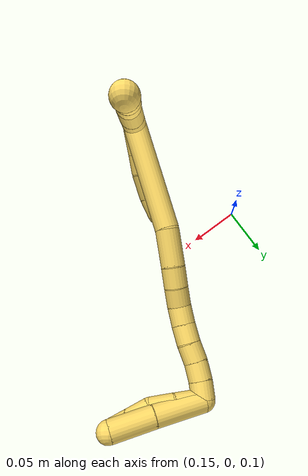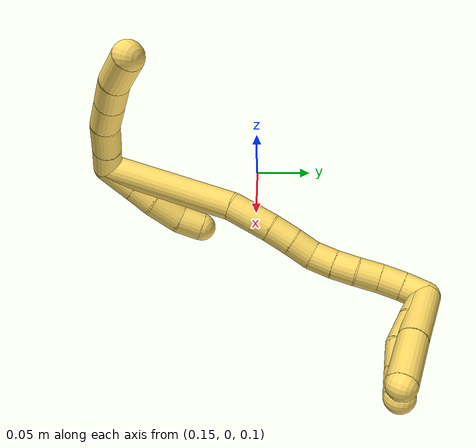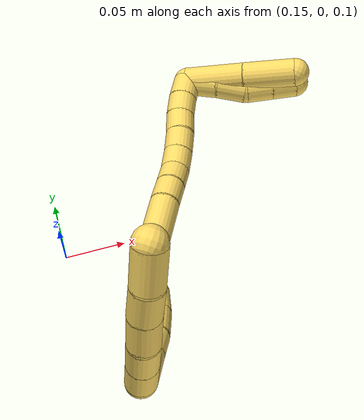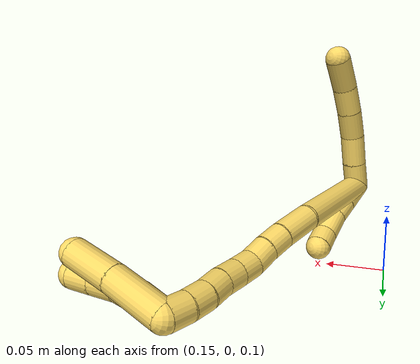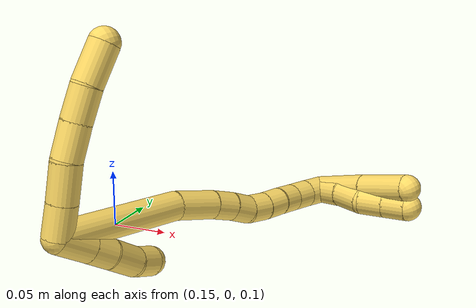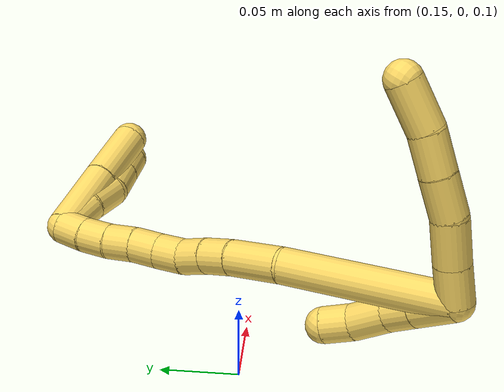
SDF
<sdf version="1.7">
 <world name="default">
  <model name="5">
   <static>0</static>
   <link name="5">
    <collision name="collision-cylinder-e_1_2_8">
     <pose>-0.012399 -0.002326 -0.005481 2.74031 -1.12314 -2.51627</pose>
     <geometry><cylinder><radius>0.0125</radius><length>0.02751</length></cylinder></geometry>
     <surface>
      <friction><ode><mu>1.16</mu><mu2>1.16</mu2><slip1>0</slip1><slip2>0</slip2></ode></friction>
      <contact><ode><kp>1e+06</kp><kd>1</kd><max_vel>0</max_vel><min_depth>0.001</min_depth></ode></contact>
     </surface>
    </collision>
    <visual name="visual-cylinder-e_1_2_8">
     <pose>-0.012399 -0.002326 -0.005481 2.74031 -1.12314 -2.51627</pose>
     <geometry><cylinder><radius>0.0125</radius><length>0.02751</length></cylinder></geometry>
     <material><ambient>1 0.858824 0.4 1</ambient></material>
    </visual>
    <collision name="collision-cylinder-e_2_8_9">
     <pose>-0.039278 -0.007407 -0.016839 2.70304 -1.14934 -2.4787</pose>
     <geometry><cylinder><radius>0.0125</radius><length>0.031734</length></cylinder></geometry>
     <surface>
      <friction><ode><mu>1.16</mu><mu2>1.16</mu2><slip1>0</slip1><slip2>0</slip2></ode></friction>
      <contact><ode><kp>1e+06</kp><kd>1</kd><max_vel>0</max_vel><min_depth>0.001</min_depth></ode></contact>
     </surface>
    </collision>
    <visual name="visual-cylinder-e_2_8_9">
     <pose>-0.039278 -0.007407 -0.016839 2.70304 -1.14934 -2.4787</pose>
     <geometry><cylinder><radius>0.0125</radius><length>0.031734</length></cylinder></geometry>
     <material><ambient>1 0.858824 0.4 1</ambient></material>
    </visual>
    <collision name="collision-cylinder-e_3_9_10">
     <pose>-0.065695 -0.013492 -0.030397 2.73274 -0.959276 -2.38304</pose>
     <geometry><cylinder><radius>0.0125</radius><length>0.029163</length></cylinder></geometry>
     <surface>
      <friction><ode><mu>1.16</mu><mu2>1.16</mu2><slip1>0</slip1><slip2>0</slip2></ode></friction>
      <contact><ode><kp>1e+06</kp><kd>1</kd><max_vel>0</max_vel><min_depth>0.001</min_depth></ode></contact>
     </surface>
    </collision>
    <visual name="visual-cylinder-e_3_9_10">
     <pose>-0.065695 -0.013492 -0.030397 2.73274 -0.959276 -2.38304</pose>
     <geometry><cylinder><radius>0.0125</radius><length>0.029163</length></cylinder></geometry>
     <material><ambient>1 0.858824 0.4 1</ambient></material>
    </visual>
    <collision name="collision-cylinder-e_4_10_11">
     <pose>-0.088996 -0.019342 -0.045775 2.82493 -0.951472 -2.54053</pose>
     <geometry><cylinder><radius>0.0125</radius><length>0.027907</length></cylinder></geometry>
     <surface>
      <friction><ode><mu>1.16</mu><mu2>1.16</mu2><slip1>0</slip1><slip2>0</slip2></ode></friction>
      <contact><ode><kp>1e+06</kp><kd>1</kd><max_vel>0</max_vel><min_depth>0.001</min_depth></ode></contact>
     </surface>
    </collision>
    <visual name="visual-cylinder-e_4_10_11">
     <pose>-0.088996 -0.019342 -0.045775 2.82493 -0.951472 -2.54053</pose>
     <geometry><cylinder><radius>0.0125</radius><length>0.027907</length></cylinder></geometry>
     <material><ambient>1 0.858824 0.4 1</ambient></material>
    </visual>
    <collision name="collision-cylinder-e_5_11_6">
     <pose>-0.112286 -0.025817 -0.064688 2.80281 -0.786902 -2.35994</pose>
     <geometry><cylinder><radius>0.0125</radius><length>0.033686</length></cylinder></geometry>
     <surface>
      <friction><ode><mu>1.16</mu><mu2>1.16</mu2><slip1>0</slip1><slip2>0</slip2></ode></friction>
      <contact><ode><kp>1e+06</kp><kd>1</kd><max_vel>0</max_vel><min_depth>0.001</min_depth></ode></contact>
     </surface>
    </collision>
    <visual name="visual-cylinder-e_5_11_6">
     <pose>-0.112286 -0.025817 -0.064688 2.80281 -0.786902 -2.35994</pose>
     <geometry><cylinder><radius>0.0125</radius><length>0.033686</length></cylinder></geometry>
     <material><ambient>1 0.858824 0.4 1</ambient></material>
    </visual>
    <collision name="collision-cylinder-e_1_2_12">
     <pose>0.010165 9.2e-05 -0.011205 -3.1334 0.736788 -3.12036</pose>
     <geometry><cylinder><radius>0.0125</radius><length>0.030258</length></cylinder></geometry>
     <surface>
      <friction><ode><mu>1.16</mu><mu2>1.16</mu2><slip1>0</slip1><slip2>0</slip2></ode></friction>
      <contact><ode><kp>1e+06</kp><kd>1</kd><max_vel>0</max_vel><min_depth>0.001</min_depth></ode></contact>
     </surface>
    </collision>
    <visual name="visual-cylinder-e_1_2_12">
     <pose>0.010165 9.2e-05 -0.011205 -3.1334 0.736788 -3.12036</pose>
     <geometry><cylinder><radius>0.0125</radius><length>0.030258</length></cylinder></geometry>
     <material><ambient>1 0.858824 0.4 1</ambient></material>
    </visual>
    <collision name="collision-cylinder-e_2_12_13">
     <pose>0.027384 0.00043 -0.030076 -3.10953 0.743461 -3.05938</pose>
     <geometry><cylinder><radius>0.0125</radius><length>0.020841</length></cylinder></geometry>
     <surface>
      <friction><ode><mu>1.16</mu><mu2>1.16</mu2><slip1>0</slip1><slip2>0</slip2></ode></friction>
      <contact><ode><kp>1e+06</kp><kd>1</kd><max_vel>0</max_vel><min_depth>0.001</min_depth></ode></contact>
     </surface>
    </collision>
    <visual name="visual-cylinder-e_2_12_13">
     <pose>0.027384 0.00043 -0.030076 -3.10953 0.743461 -3.05938</pose>
     <geometry><cylinder><radius>0.0125</radius><length>0.020841</length></cylinder></geometry>
     <material><ambient>1 0.858824 0.4 1</ambient></material>
    </visual>
    <collision name="collision-cylinder-e_3_13_14">
     <pose>0.044363 -0.000722 -0.047445 2.99851 0.791717 2.80194</pose>
     <geometry><cylinder><radius>0.0125</radius><length>0.0279</length></cylinder></geometry>
     <surface>
      <friction><ode><mu>1.16</mu><mu2>1.16</mu2><slip1>0</slip1><slip2>0</slip2></ode></friction>
      <contact><ode><kp>1e+06</kp><kd>1</kd><max_vel>0</max_vel><min_depth>0.001</min_depth></ode></contact>
     </surface>
    </collision>
    <visual name="visual-cylinder-e_3_13_14">
     <pose>0.044363 -0.000722 -0.047445 2.99851 0.791717 2.80194</pose>
     <geometry><cylinder><radius>0.0125</radius><length>0.0279</length></cylinder></geometry>
     <material><ambient>1 0.858824 0.4 1</ambient></material>
    </visual>
    <collision name="collision-cylinder-e_4_14_5">
     <pose>0.060123 -0.005085 -0.065358 2.79509 0.589019 2.09501</pose>
     <geometry><cylinder><radius>0.0125</radius><length>0.021001</length></cylinder></geometry>
     <surface>
      <friction><ode><mu>1.16</mu><mu2>1.16</mu2><slip1>0</slip1><slip2>0</slip2></ode></friction>
      <contact><ode><kp>1e+06</kp><kd>1</kd><max_vel>0</max_vel><min_depth>0.001</min_depth></ode></contact>
     </surface>
    </collision>
    <visual name="visual-cylinder-e_4_14_5">
     <pose>0.060123 -0.005085 -0.065358 2.79509 0.589019 2.09501</pose>
     <geometry><cylinder><radius>0.0125</radius><length>0.021001</length></cylinder></geometry>
     <material><ambient>1 0.858824 0.4 1</ambient></material>
    </visual>
    <collision name="collision-cylinder-e_1_2_15">
     <pose>0.017865 -0.011787 -0.055203 2.93123 0.306515 1.94254</pose>
     <geometry><cylinder><radius>0.0125</radius><length>0.118414</length></cylinder></geometry>
     <surface>
      <friction><ode><mu>1.16</mu><mu2>1.16</mu2><slip1>0</slip1><slip2>0</slip2></ode></friction>
      <contact><ode><kp>1e+06</kp><kd>1</kd><max_vel>0</max_vel><min_depth>0.001</min_depth></ode></contact>
     </surface>
    </collision>
    <visual name="visual-cylinder-e_1_2_15">
     <pose>0.017865 -0.011787 -0.055203 2.93123 0.306515 1.94254</pose>
     <geometry><cylinder><radius>0.0125</radius><length>0.118414</length></cylinder></geometry>
     <material><ambient>1 0.858824 0.4 1</ambient></material>
    </visual>
    <collision name="collision-cylinder-e_2_15_16">
     <pose>0.043966 -0.024271 -0.128194 3.10243 0.433337 2.96412</pose>
     <geometry><cylinder><radius>0.0125</radius><length>0.039229</length></cylinder></geometry>
     <surface>
      <friction><ode><mu>1.16</mu><mu2>1.16</mu2><slip1>0</slip1><slip2>0</slip2></ode></friction>
      <contact><ode><kp>1e+06</kp><kd>1</kd><max_vel>0</max_vel><min_depth>0.001</min_depth></ode></contact>
     </surface>
    </collision>
    <visual name="visual-cylinder-e_2_15_16">
     <pose>0.043966 -0.024271 -0.128194 3.10243 0.433337 2.96412</pose>
     <geometry><cylinder><radius>0.0125</radius><length>0.039229</length></cylinder></geometry>
     <material><ambient>1 0.858824 0.4 1</ambient></material>
    </visual>
    <collision name="collision-cylinder-e_3_16_17">
     <pose>0.057531 -0.025016 -0.155317 3.13642 0.518722 3.12209</pose>
     <geometry><cylinder><radius>0.0125</radius><length>0.021497</length></cylinder></geometry>
     <surface>
      <friction><ode><mu>1.16</mu><mu2>1.16</mu2><slip1>0</slip1><slip2>0</slip2></ode></friction>
      <contact><ode><kp>1e+06</kp><kd>1</kd><max_vel>0</max_vel><min_depth>0.001</min_depth></ode></contact>
     </surface>
    </collision>
    <visual name="visual-cylinder-e_3_16_17">
     <pose>0.057531 -0.025016 -0.155317 3.13642 0.518722 3.12209</pose>
     <geometry><cylinder><radius>0.0125</radius><length>0.021497</length></cylinder></geometry>
     <material><ambient>1 0.858824 0.4 1</ambient></material>
    </visual>
    <collision name="collision-cylinder-e_4_17_18">
     <pose>0.068675 -0.025089 -0.173049 3.13876 0.605603 3.13252</pose>
     <geometry><cylinder><radius>0.0125</radius><length>0.020429</length></cylinder></geometry>
     <surface>
      <friction><ode><mu>1.16</mu><mu2>1.16</mu2><slip1>0</slip1><slip2>0</slip2></ode></friction>
      <contact><ode><kp>1e+06</kp><kd>1</kd><max_vel>0</max_vel><min_depth>0.001</min_depth></ode></contact>
     </surface>
    </collision>
    <visual name="visual-cylinder-e_4_17_18">
     <pose>0.068675 -0.025089 -0.173049 3.13876 0.605603 3.13252</pose>
     <geometry><cylinder><radius>0.0125</radius><length>0.020429</length></cylinder></geometry>
     <material><ambient>1 0.858824 0.4 1</ambient></material>
    </visual>
    <collision name="collision-cylinder-e_5_18_19">
     <pose>0.077866 -0.026301 -0.190921 3.0168 0.339901 2.44327</pose>
     <geometry><cylinder><radius>0.0125</radius><length>0.020255</length></cylinder></geometry>
     <surface>
      <friction><ode><mu>1.16</mu><mu2>1.16</mu2><slip1>0</slip1><slip2>0</slip2></ode></friction>
      <contact><ode><kp>1e+06</kp><kd>1</kd><max_vel>0</max_vel><min_depth>0.001</min_depth></ode></contact>
     </surface>
    </collision>
    <visual name="visual-cylinder-e_5_18_19">
     <pose>0.077866 -0.026301 -0.190921 3.0168 0.339901 2.44327</pose>
     <geometry><cylinder><radius>0.0125</radius><length>0.020255</length></cylinder></geometry>
     <material><ambient>1 0.858824 0.4 1</ambient></material>
    </visual>
    <collision name="collision-cylinder-e_6_19_20">
     <pose>0.083956 -0.029342 -0.209929 2.94964 0.272458 1.91706</pose>
     <geometry><cylinder><radius>0.0125</radius><length>0.020169</length></cylinder></geometry>
     <surface>
      <friction><ode><mu>1.16</mu><mu2>1.16</mu2><slip1>0</slip1><slip2>0</slip2></ode></friction>
      <contact><ode><kp>1e+06</kp><kd>1</kd><max_vel>0</max_vel><min_depth>0.001</min_depth></ode></contact>
     </surface>
    </collision>
    <visual name="visual-cylinder-e_6_19_20">
     <pose>0.083956 -0.029342 -0.209929 2.94964 0.272458 1.91706</pose>
     <geometry><cylinder><radius>0.0125</radius><length>0.020169</length></cylinder></geometry>
     <material><ambient>1 0.858824 0.4 1</ambient></material>
    </visual>
    <collision name="collision-cylinder-e_7_20_21">
     <pose>0.090181 -0.033717 -0.228481 2.86888 0.358742 1.84603</pose>
     <geometry><cylinder><radius>0.0125</radius><length>0.020001</length></cylinder></geometry>
     <surface>
      <friction><ode><mu>1.16</mu><mu2>1.16</mu2><slip1>0</slip1><slip2>0</slip2></ode></friction>
      <contact><ode><kp>1e+06</kp><kd>1</kd><max_vel>0</max_vel><min_depth>0.001</min_depth></ode></contact>
     </surface>
    </collision>
    <visual name="visual-cylinder-e_7_20_21">
     <pose>0.090181 -0.033717 -0.228481 2.86888 0.358742 1.84603</pose>
     <geometry><cylinder><radius>0.0125</radius><length>0.020001</length></cylinder></geometry>
     <material><ambient>1 0.858824 0.4 1</ambient></material>
    </visual>
    <collision name="collision-cylinder-e_8_21_22">
     <pose>0.096501 -0.037767 -0.246976 2.98181 0.284622 2.12249</pose>
     <geometry><cylinder><radius>0.0125</radius><length>0.020003</length></cylinder></geometry>
     <surface>
      <friction><ode><mu>1.16</mu><mu2>1.16</mu2><slip1>0</slip1><slip2>0</slip2></ode></friction>
      <contact><ode><kp>1e+06</kp><kd>1</kd><max_vel>0</max_vel><min_depth>0.001</min_depth></ode></contact>
     </surface>
    </collision>
    <visual name="visual-cylinder-e_8_21_22">
     <pose>0.096501 -0.037767 -0.246976 2.98181 0.284622 2.12249</pose>
     <geometry><cylinder><radius>0.0125</radius><length>0.020003</length></cylinder></geometry>
     <material><ambient>1 0.858824 0.4 1</ambient></material>
    </visual>
    <collision name="collision-cylinder-e_9_22_1">
     <pose>0.101604 -0.0398 -0.266174 3.08958 0.231556 2.7015</pose>
     <geometry><cylinder><radius>0.0125</radius><length>0.020002</length></cylinder></geometry>
     <surface>
      <friction><ode><mu>1.16</mu><mu2>1.16</mu2><slip1>0</slip1><slip2>0</slip2></ode></friction>
      <contact><ode><kp>1e+06</kp><kd>1</kd><max_vel>0</max_vel><min_depth>0.001</min_depth></ode></contact>
     </surface>
    </collision>
    <visual name="visual-cylinder-e_9_22_1">
     <pose>0.101604 -0.0398 -0.266174 3.08958 0.231556 2.7015</pose>
     <geometry><cylinder><radius>0.0125</radius><length>0.020002</length></cylinder></geometry>
     <material><ambient>1 0.858824 0.4 1</ambient></material>
    </visual>
    <collision name="collision-cylinder-e_1_1_23">
     <pose>0.099434 -0.026575 -0.277759 -1.70575 -0.311741 0.356039</pose>
     <geometry><cylinder><radius>0.0125</radius><length>0.029117</length></cylinder></geometry>
     <surface>
      <friction><ode><mu>1.16</mu><mu2>1.16</mu2><slip1>0</slip1><slip2>0</slip2></ode></friction>
      <contact><ode><kp>1e+06</kp><kd>1</kd><max_vel>0</max_vel><min_depth>0.001</min_depth></ode></contact>
     </surface>
    </collision>
    <visual name="visual-cylinder-e_1_1_23">
     <pose>0.099434 -0.026575 -0.277759 -1.70575 -0.311741 0.356039</pose>
     <geometry><cylinder><radius>0.0125</radius><length>0.029117</length></cylinder></geometry>
     <material><ambient>1 0.858824 0.4 1</ambient></material>
    </visual>
    <collision name="collision-cylinder-e_2_23_24">
     <pose>0.09295 -0.00015 -0.281142 -1.68985 -0.156614 0.176367</pose>
     <geometry><cylinder><radius>0.0125</radius><length>0.025888</length></cylinder></geometry>
     <surface>
      <friction><ode><mu>1.16</mu><mu2>1.16</mu2><slip1>0</slip1><slip2>0</slip2></ode></friction>
      <contact><ode><kp>1e+06</kp><kd>1</kd><max_vel>0</max_vel><min_depth>0.001</min_depth></ode></contact>
     </surface>
    </collision>
    <visual name="visual-cylinder-e_2_23_24">
     <pose>0.09295 -0.00015 -0.281142 -1.68985 -0.156614 0.176367</pose>
     <geometry><cylinder><radius>0.0125</radius><length>0.025888</length></cylinder></geometry>
     <material><ambient>1 0.858824 0.4 1</ambient></material>
    </visual>
    <collision name="collision-cylinder-e_3_24_25">
     <pose>0.089413 0.022934 -0.287757 -2.02696 -0.130404 0.208777</pose>
     <geometry><cylinder><radius>0.0125</radius><length>0.023341</length></cylinder></geometry>
     <surface>
      <friction><ode><mu>1.16</mu><mu2>1.16</mu2><slip1>0</slip1><slip2>0</slip2></ode></friction>
      <contact><ode><kp>1e+06</kp><kd>1</kd><max_vel>0</max_vel><min_depth>0.001</min_depth></ode></contact>
     </surface>
    </collision>
    <visual name="visual-cylinder-e_3_24_25">
     <pose>0.089413 0.022934 -0.287757 -2.02696 -0.130404 0.208777</pose>
     <geometry><cylinder><radius>0.0125</radius><length>0.023341</length></cylinder></geometry>
     <material><ambient>1 0.858824 0.4 1</ambient></material>
    </visual>
    <collision name="collision-cylinder-e_4_25_4">
     <pose>0.086471 0.042972 -0.297554 -2.02397 -0.131992 0.210611</pose>
     <geometry><cylinder><radius>0.0125</radius><length>0.021655</length></cylinder></geometry>
     <surface>
      <friction><ode><mu>1.16</mu><mu2>1.16</mu2><slip1>0</slip1><slip2>0</slip2></ode></friction>
      <contact><ode><kp>1e+06</kp><kd>1</kd><max_vel>0</max_vel><min_depth>0.001</min_depth></ode></contact>
     </surface>
    </collision>
    <visual name="visual-cylinder-e_4_25_4">
     <pose>0.086471 0.042972 -0.297554 -2.02397 -0.131992 0.210611</pose>
     <geometry><cylinder><radius>0.0125</radius><length>0.021655</length></cylinder></geometry>
     <material><ambient>1 0.858824 0.4 1</ambient></material>
    </visual>
    <collision name="collision-cylinder-e_1_1_26">
     <pose>0.093719 -0.016721 -0.283422 -1.87976 -0.390139 0.528295</pose>
     <geometry><cylinder><radius>0.0125</radius><length>0.053537</length></cylinder></geometry>
     <surface>
      <friction><ode><mu>1.16</mu><mu2>1.16</mu2><slip1>0</slip1><slip2>0</slip2></ode></friction>
      <contact><ode><kp>1e+06</kp><kd>1</kd><max_vel>0</max_vel><min_depth>0.001</min_depth></ode></contact>
     </surface>
    </collision>
    <visual name="visual-cylinder-e_1_1_26">
     <pose>0.093719 -0.016721 -0.283422 -1.87976 -0.390139 0.528295</pose>
     <geometry><cylinder><radius>0.0125</radius><length>0.053537</length></cylinder></geometry>
     <material><ambient>1 0.858824 0.4 1</ambient></material>
    </visual>
    <collision name="collision-cylinder-e_2_26_3">
     <pose>0.075686 0.027632 -0.297785 -1.88871 -0.344794 0.472244</pose>
     <geometry><cylinder><radius>0.0125</radius><length>0.046463</length></cylinder></geometry>
     <surface>
      <friction><ode><mu>1.16</mu><mu2>1.16</mu2><slip1>0</slip1><slip2>0</slip2></ode></friction>
      <contact><ode><kp>1e+06</kp><kd>1</kd><max_vel>0</max_vel><min_depth>0.001</min_depth></ode></contact>
     </surface>
    </collision>
    <visual name="visual-cylinder-e_2_26_3">
     <pose>0.075686 0.027632 -0.297785 -1.88871 -0.344794 0.472244</pose>
     <geometry><cylinder><radius>0.0125</radius><length>0.046463</length></cylinder></geometry>
     <material><ambient>1 0.858824 0.4 1</ambient></material>
    </visual>
    <collision name="collision-sphere-3">
     <pose>0.067834 0.048401 -0.304619 0 -0 0</pose>
     <geometry><sphere><radius>0.0125</radius></sphere></geometry>
     <surface>
      <friction><ode><mu>1.16</mu><mu2>1.16</mu2><slip1>0</slip1><slip2>0</slip2></ode></friction>
      <contact><ode><kp>1e+06</kp><kd>1</kd><max_vel>0</max_vel><min_depth>0.001</min_depth></ode></contact>
     </surface>
    </collision>
    <visual name="visual-sphere-3">
     <pose>0.067834 0.048401 -0.304619 0 -0 0</pose>
     <geometry><sphere><radius>0.0125</radius></sphere></geometry>
     <material><ambient>1 0.858824 0.4 1</ambient></material>
    </visual>
    <collision name="collision-sphere-26">
     <pose>0.083538 0.006864 -0.29095 0 -0 0</pose>
     <geometry><sphere><radius>0.0125</radius></sphere></geometry>
     <surface>
      <friction><ode><mu>1.16</mu><mu2>1.16</mu2><slip1>0</slip1><slip2>0</slip2></ode></friction>
      <contact><ode><kp>1e+06</kp><kd>1</kd><max_vel>0</max_vel><min_depth>0.001</min_depth></ode></contact>
     </surface>
    </collision>
    <visual name="visual-sphere-26">
     <pose>0.083538 0.006864 -0.29095 0 -0 0</pose>
     <geometry><sphere><radius>0.0125</radius></sphere></geometry>
     <material><ambient>1 0.858824 0.4 1</ambient></material>
    </visual>
    <collision name="collision-sphere-4">
     <pose>0.085046 0.052621 -0.302253 0 -0 0</pose>
     <geometry><sphere><radius>0.0125</radius></sphere></geometry>
     <surface>
      <friction><ode><mu>1.16</mu><mu2>1.16</mu2><slip1>0</slip1><slip2>0</slip2></ode></friction>
      <contact><ode><kp>1e+06</kp><kd>1</kd><max_vel>0</max_vel><min_depth>0.001</min_depth></ode></contact>
     </surface>
    </collision>
    <visual name="visual-sphere-4">
     <pose>0.085046 0.052621 -0.302253 0 -0 0</pose>
     <geometry><sphere><radius>0.0125</radius></sphere></geometry>
     <material><ambient>1 0.858824 0.4 1</ambient></material>
    </visual>
    <collision name="collision-sphere-25">
     <pose>0.087896 0.033322 -0.292855 0 -0 0</pose>
     <geometry><sphere><radius>0.0125</radius></sphere></geometry>
     <surface>
      <friction><ode><mu>1.16</mu><mu2>1.16</mu2><slip1>0</slip1><slip2>0</slip2></ode></friction>
      <contact><ode><kp>1e+06</kp><kd>1</kd><max_vel>0</max_vel><min_depth>0.001</min_depth></ode></contact>
     </surface>
    </collision>
    <visual name="visual-sphere-25">
     <pose>0.087896 0.033322 -0.292855 0 -0 0</pose>
     <geometry><sphere><radius>0.0125</radius></sphere></geometry>
     <material><ambient>1 0.858824 0.4 1</ambient></material>
    </visual>
    <collision name="collision-sphere-24">
     <pose>0.090931 0.012545 -0.28266 0 -0 0</pose>
     <geometry><sphere><radius>0.0125</radius></sphere></geometry>
     <surface>
      <friction><ode><mu>1.16</mu><mu2>1.16</mu2><slip1>0</slip1><slip2>0</slip2></ode></friction>
      <contact><ode><kp>1e+06</kp><kd>1</kd><max_vel>0</max_vel><min_depth>0.001</min_depth></ode></contact>
     </surface>
    </collision>
    <visual name="visual-sphere-24">
     <pose>0.090931 0.012545 -0.28266 0 -0 0</pose>
     <geometry><sphere><radius>0.0125</radius></sphere></geometry>
     <material><ambient>1 0.858824 0.4 1</ambient></material>
    </visual>
    <collision name="collision-sphere-23">
     <pose>0.094969 -0.012845 -0.279623 0 -0 0</pose>
     <geometry><sphere><radius>0.0125</radius></sphere></geometry>
     <surface>
      <friction><ode><mu>1.16</mu><mu2>1.16</mu2><slip1>0</slip1><slip2>0</slip2></ode></friction>
      <contact><ode><kp>1e+06</kp><kd>1</kd><max_vel>0</max_vel><min_depth>0.001</min_depth></ode></contact>
     </surface>
    </collision>
    <visual name="visual-sphere-23">
     <pose>0.094969 -0.012845 -0.279623 0 -0 0</pose>
     <geometry><sphere><radius>0.0125</radius></sphere></geometry>
     <material><ambient>1 0.858824 0.4 1</ambient></material>
    </visual>
    <collision name="collision-sphere-1">
     <pose>0.103899 -0.040306 -0.275895 0 -0 0</pose>
     <geometry><sphere><radius>0.0125</radius></sphere></geometry>
     <surface>
      <friction><ode><mu>1.16</mu><mu2>1.16</mu2><slip1>0</slip1><slip2>0</slip2></ode></friction>
      <contact><ode><kp>1e+06</kp><kd>1</kd><max_vel>0</max_vel><min_depth>0.001</min_depth></ode></contact>
     </surface>
    </collision>
    <visual name="visual-sphere-1">
     <pose>0.103899 -0.040306 -0.275895 0 -0 0</pose>
     <geometry><sphere><radius>0.0125</radius></sphere></geometry>
     <material><ambient>1 0.858824 0.4 1</ambient></material>
    </visual>
    <collision name="collision-sphere-22">
     <pose>0.099309 -0.039294 -0.256453 0 -0 0</pose>
     <geometry><sphere><radius>0.0125</radius></sphere></geometry>
     <surface>
      <friction><ode><mu>1.16</mu><mu2>1.16</mu2><slip1>0</slip1><slip2>0</slip2></ode></friction>
      <contact><ode><kp>1e+06</kp><kd>1</kd><max_vel>0</max_vel><min_depth>0.001</min_depth></ode></contact>
     </surface>
    </collision>
    <visual name="visual-sphere-22">
     <pose>0.099309 -0.039294 -0.256453 0 -0 0</pose>
     <geometry><sphere><radius>0.0125</radius></sphere></geometry>
     <material><ambient>1 0.858824 0.4 1</ambient></material>
    </visual>
    <collision name="collision-sphere-21">
     <pose>0.093692 -0.036239 -0.237499 0 -0 0</pose>
     <geometry><sphere><radius>0.0125</radius></sphere></geometry>
     <surface>
      <friction><ode><mu>1.16</mu><mu2>1.16</mu2><slip1>0</slip1><slip2>0</slip2></ode></friction>
      <contact><ode><kp>1e+06</kp><kd>1</kd><max_vel>0</max_vel><min_depth>0.001</min_depth></ode></contact>
     </surface>
    </collision>
    <visual name="visual-sphere-21">
     <pose>0.093692 -0.036239 -0.237499 0 -0 0</pose>
     <geometry><sphere><radius>0.0125</radius></sphere></geometry>
     <material><ambient>1 0.858824 0.4 1</ambient></material>
    </visual>
    <collision name="collision-sphere-6">
     <pose>-0.124214 -0.029769 -0.075904 0 -0 0</pose>
     <geometry><sphere><radius>0.0125</radius></sphere></geometry>
     <surface>
      <friction><ode><mu>1.16</mu><mu2>1.16</mu2><slip1>0</slip1><slip2>0</slip2></ode></friction>
      <contact><ode><kp>1e+06</kp><kd>1</kd><max_vel>0</max_vel><min_depth>0.001</min_depth></ode></contact>
     </surface>
    </collision>
    <visual name="visual-sphere-6">
     <pose>-0.124214 -0.029769 -0.075904 0 -0 0</pose>
     <geometry><sphere><radius>0.0125</radius></sphere></geometry>
     <material><ambient>1 0.858824 0.4 1</ambient></material>
    </visual>
    <collision name="collision-sphere-11">
     <pose>-0.100358 -0.021864 -0.053472 0 -0 0</pose>
     <geometry><sphere><radius>0.0125</radius></sphere></geometry>
     <surface>
      <friction><ode><mu>1.16</mu><mu2>1.16</mu2><slip1>0</slip1><slip2>0</slip2></ode></friction>
      <contact><ode><kp>1e+06</kp><kd>1</kd><max_vel>0</max_vel><min_depth>0.001</min_depth></ode></contact>
     </surface>
    </collision>
    <visual name="visual-sphere-11">
     <pose>-0.100358 -0.021864 -0.053472 0 -0 0</pose>
     <geometry><sphere><radius>0.0125</radius></sphere></geometry>
     <material><ambient>1 0.858824 0.4 1</ambient></material>
    </visual>
    <collision name="collision-sphere-10">
     <pose>-0.077634 -0.01682 -0.038078 0 -0 0</pose>
     <geometry><sphere><radius>0.0125</radius></sphere></geometry>
     <surface>
      <friction><ode><mu>1.16</mu><mu2>1.16</mu2><slip1>0</slip1><slip2>0</slip2></ode></friction>
      <contact><ode><kp>1e+06</kp><kd>1</kd><max_vel>0</max_vel><min_depth>0.001</min_depth></ode></contact>
     </surface>
    </collision>
    <visual name="visual-sphere-10">
     <pose>-0.077634 -0.01682 -0.038078 0 -0 0</pose>
     <geometry><sphere><radius>0.0125</radius></sphere></geometry>
     <material><ambient>1 0.858824 0.4 1</ambient></material>
    </visual>
    <collision name="collision-sphere-9">
     <pose>-0.053756 -0.010164 -0.022715 0 -0 0</pose>
     <geometry><sphere><radius>0.0125</radius></sphere></geometry>
     <surface>
      <friction><ode><mu>1.16</mu><mu2>1.16</mu2><slip1>0</slip1><slip2>0</slip2></ode></friction>
      <contact><ode><kp>1e+06</kp><kd>1</kd><max_vel>0</max_vel><min_depth>0.001</min_depth></ode></contact>
     </surface>
    </collision>
    <visual name="visual-sphere-9">
     <pose>-0.053756 -0.010164 -0.022715 0 -0 0</pose>
     <geometry><sphere><radius>0.0125</radius></sphere></geometry>
     <material><ambient>1 0.858824 0.4 1</ambient></material>
    </visual>
    <collision name="collision-sphere-2">
     <geometry><sphere><radius>0.0125</radius></sphere></geometry>
     <surface>
      <friction><ode><mu>1.16</mu><mu2>1.16</mu2><slip1>0</slip1><slip2>0</slip2></ode></friction>
      <contact><ode><kp>1e+06</kp><kd>1</kd><max_vel>0</max_vel><min_depth>0.001</min_depth></ode></contact>
     </surface>
    </collision>
    <visual name="visual-sphere-2">
     <geometry><sphere><radius>0.0125</radius></sphere></geometry>
     <material><ambient>1 0.858824 0.4 1</ambient></material>
    </visual>
    <collision name="collision-sphere-19">
     <pose>0.081242 -0.027489 -0.200395 0 -0 0</pose>
     <geometry><sphere><radius>0.0125</radius></sphere></geometry>
     <surface>
      <friction><ode><mu>1.16</mu><mu2>1.16</mu2><slip1>0</slip1><slip2>0</slip2></ode></friction>
      <contact><ode><kp>1e+06</kp><kd>1</kd><max_vel>0</max_vel><min_depth>0.001</min_depth></ode></contact>
     </surface>
    </collision>
    <visual name="visual-sphere-19">
     <pose>0.081242 -0.027489 -0.200395 0 -0 0</pose>
     <geometry><sphere><radius>0.0125</radius></sphere></geometry>
     <material><ambient>1 0.858824 0.4 1</ambient></material>
    </visual>
    <collision name="collision-sphere-8">
     <pose>-0.024799 -0.004651 -0.010962 0 -0 0</pose>
     <geometry><sphere><radius>0.0125</radius></sphere></geometry>
     <surface>
      <friction><ode><mu>1.16</mu><mu2>1.16</mu2><slip1>0</slip1><slip2>0</slip2></ode></friction>
      <contact><ode><kp>1e+06</kp><kd>1</kd><max_vel>0</max_vel><min_depth>0.001</min_depth></ode></contact>
     </surface>
    </collision>
    <visual name="visual-sphere-8">
     <pose>-0.024799 -0.004651 -0.010962 0 -0 0</pose>
     <geometry><sphere><radius>0.0125</radius></sphere></geometry>
     <material><ambient>1 0.858824 0.4 1</ambient></material>
    </visual>
    <collision name="collision-sphere-12">
     <pose>0.020331 0.000184 -0.02241 0 -0 0</pose>
     <geometry><sphere><radius>0.0125</radius></sphere></geometry>
     <surface>
      <friction><ode><mu>1.16</mu><mu2>1.16</mu2><slip1>0</slip1><slip2>0</slip2></ode></friction>
      <contact><ode><kp>1e+06</kp><kd>1</kd><max_vel>0</max_vel><min_depth>0.001</min_depth></ode></contact>
     </surface>
    </collision>
    <visual name="visual-sphere-12">
     <pose>0.020331 0.000184 -0.02241 0 -0 0</pose>
     <geometry><sphere><radius>0.0125</radius></sphere></geometry>
     <material><ambient>1 0.858824 0.4 1</ambient></material>
    </visual>
    <collision name="collision-sphere-13">
     <pose>0.034437 0.000676 -0.037743 0 -0 0</pose>
     <geometry><sphere><radius>0.0125</radius></sphere></geometry>
     <surface>
      <friction><ode><mu>1.16</mu><mu2>1.16</mu2><slip1>0</slip1><slip2>0</slip2></ode></friction>
      <contact><ode><kp>1e+06</kp><kd>1</kd><max_vel>0</max_vel><min_depth>0.001</min_depth></ode></contact>
     </surface>
    </collision>
    <visual name="visual-sphere-13">
     <pose>0.034437 0.000676 -0.037743 0 -0 0</pose>
     <geometry><sphere><radius>0.0125</radius></sphere></geometry>
     <material><ambient>1 0.858824 0.4 1</ambient></material>
    </visual>
    <collision name="collision-sphere-14">
     <pose>0.05429 -0.00212 -0.057146 0 -0 0</pose>
     <geometry><sphere><radius>0.0125</radius></sphere></geometry>
     <surface>
      <friction><ode><mu>1.16</mu><mu2>1.16</mu2><slip1>0</slip1><slip2>0</slip2></ode></friction>
      <contact><ode><kp>1e+06</kp><kd>1</kd><max_vel>0</max_vel><min_depth>0.001</min_depth></ode></contact>
     </surface>
    </collision>
    <visual name="visual-sphere-14">
     <pose>0.05429 -0.00212 -0.057146 0 -0 0</pose>
     <geometry><sphere><radius>0.0125</radius></sphere></geometry>
     <material><ambient>1 0.858824 0.4 1</ambient></material>
    </visual>
    <collision name="collision-sphere-5">
     <pose>0.065956 -0.00805 -0.07357 0 -0 0</pose>
     <geometry><sphere><radius>0.0125</radius></sphere></geometry>
     <surface>
      <friction><ode><mu>1.16</mu><mu2>1.16</mu2><slip1>0</slip1><slip2>0</slip2></ode></friction>
      <contact><ode><kp>1e+06</kp><kd>1</kd><max_vel>0</max_vel><min_depth>0.001</min_depth></ode></contact>
     </surface>
    </collision>
    <visual name="visual-sphere-5">
     <pose>0.065956 -0.00805 -0.07357 0 -0 0</pose>
     <geometry><sphere><radius>0.0125</radius></sphere></geometry>
     <material><ambient>1 0.858824 0.4 1</ambient></material>
    </visual>
    <collision name="collision-sphere-15">
     <pose>0.03573 -0.023574 -0.110406 0 -0 0</pose>
     <geometry><sphere><radius>0.0125</radius></sphere></geometry>
     <surface>
      <friction><ode><mu>1.16</mu><mu2>1.16</mu2><slip1>0</slip1><slip2>0</slip2></ode></friction>
      <contact><ode><kp>1e+06</kp><kd>1</kd><max_vel>0</max_vel><min_depth>0.001</min_depth></ode></contact>
     </surface>
    </collision>
    <visual name="visual-sphere-15">
     <pose>0.03573 -0.023574 -0.110406 0 -0 0</pose>
     <geometry><sphere><radius>0.0125</radius></sphere></geometry>
     <material><ambient>1 0.858824 0.4 1</ambient></material>
    </visual>
    <collision name="collision-sphere-16">
     <pose>0.052202 -0.024968 -0.145982 0 -0 0</pose>
     <geometry><sphere><radius>0.0125</radius></sphere></geometry>
     <surface>
      <friction><ode><mu>1.16</mu><mu2>1.16</mu2><slip1>0</slip1><slip2>0</slip2></ode></friction>
      <contact><ode><kp>1e+06</kp><kd>1</kd><max_vel>0</max_vel><min_depth>0.001</min_depth></ode></contact>
     </surface>
    </collision>
    <visual name="visual-sphere-16">
     <pose>0.052202 -0.024968 -0.145982 0 -0 0</pose>
     <geometry><sphere><radius>0.0125</radius></sphere></geometry>
     <material><ambient>1 0.858824 0.4 1</ambient></material>
    </visual>
    <collision name="collision-sphere-17">
     <pose>0.06286 -0.025065 -0.164651 0 -0 0</pose>
     <geometry><sphere><radius>0.0125</radius></sphere></geometry>
     <surface>
      <friction><ode><mu>1.16</mu><mu2>1.16</mu2><slip1>0</slip1><slip2>0</slip2></ode></friction>
      <contact><ode><kp>1e+06</kp><kd>1</kd><max_vel>0</max_vel><min_depth>0.001</min_depth></ode></contact>
     </surface>
    </collision>
    <visual name="visual-sphere-17">
     <pose>0.06286 -0.025065 -0.164651 0 -0 0</pose>
     <geometry><sphere><radius>0.0125</radius></sphere></geometry>
     <material><ambient>1 0.858824 0.4 1</ambient></material>
    </visual>
    <collision name="collision-sphere-18">
     <pose>0.07449 -0.025112 -0.181447 0 -0 0</pose>
     <geometry><sphere><radius>0.0125</radius></sphere></geometry>
     <surface>
      <friction><ode><mu>1.16</mu><mu2>1.16</mu2><slip1>0</slip1><slip2>0</slip2></ode></friction>
      <contact><ode><kp>1e+06</kp><kd>1</kd><max_vel>0</max_vel><min_depth>0.001</min_depth></ode></contact>
     </surface>
    </collision>
    <visual name="visual-sphere-18">
     <pose>0.07449 -0.025112 -0.181447 0 -0 0</pose>
     <geometry><sphere><radius>0.0125</radius></sphere></geometry>
     <material><ambient>1 0.858824 0.4 1</ambient></material>
    </visual>
    <collision name="collision-sphere-20">
     <pose>0.08667 -0.031195 -0.219463 0 -0 0</pose>
     <geometry><sphere><radius>0.0125</radius></sphere></geometry>
     <surface>
      <friction><ode><mu>1.16</mu><mu2>1.16</mu2><slip1>0</slip1><slip2>0</slip2></ode></friction>
      <contact><ode><kp>1e+06</kp><kd>1</kd><max_vel>0</max_vel><min_depth>0.001</min_depth></ode></contact>
     </surface>
    </collision>
    <visual name="visual-sphere-20">
     <pose>0.08667 -0.031195 -0.219463 0 -0 0</pose>
     <geometry><sphere><radius>0.0125</radius></sphere></geometry>
     <material><ambient>1 0.858824 0.4 1</ambient></material>
    </visual>
    <inertial>
     <pose>0.035895 -0.010519 -0.143467 0 -0 0</pose>
     <mass>0.75</mass>
     <inertia>
      <ixx>9.5e-05</ixx>
      <ixy>0</ixy>
      <ixz>0</ixz>
      <iyy>0.000244</iyy>
      <iyz>0</iyz>
      <izz>-6.5e-05</izz>
     </inertia>
    </inertial>
   </link>
   <pose>0.18345 -0.132274 0.141257 -2.40367 1.27502 1.73697</pose>
  </model>
 </world>
</sdf>
